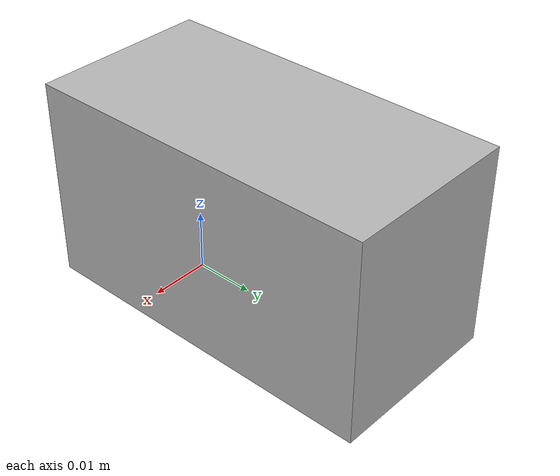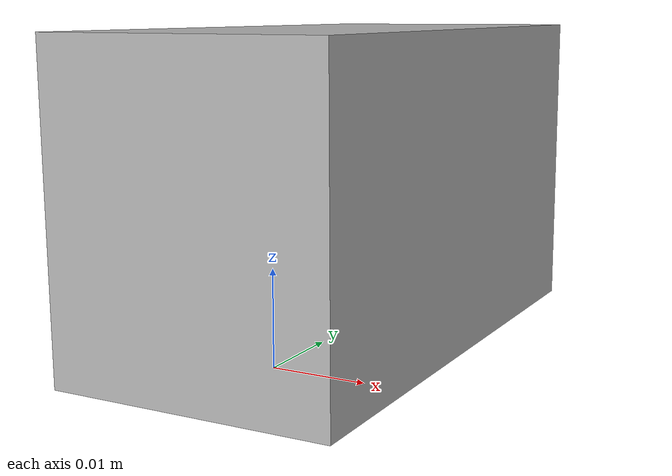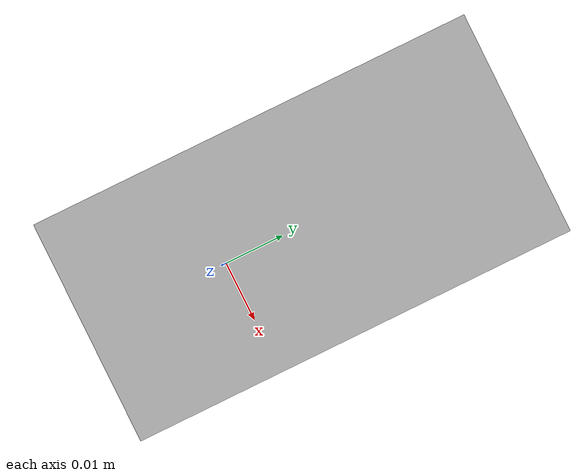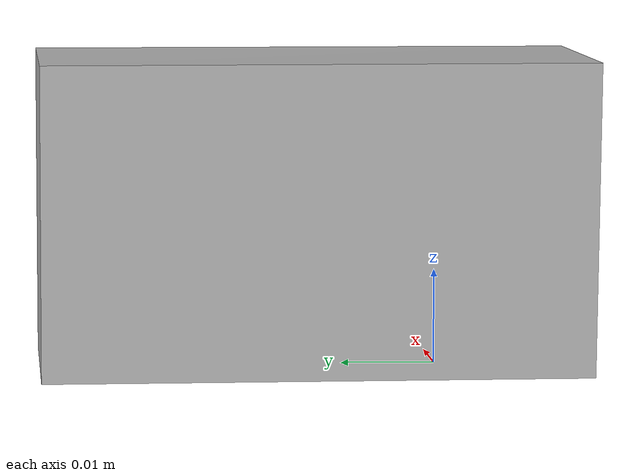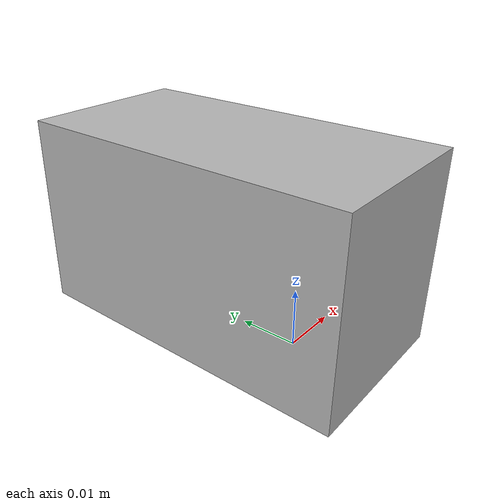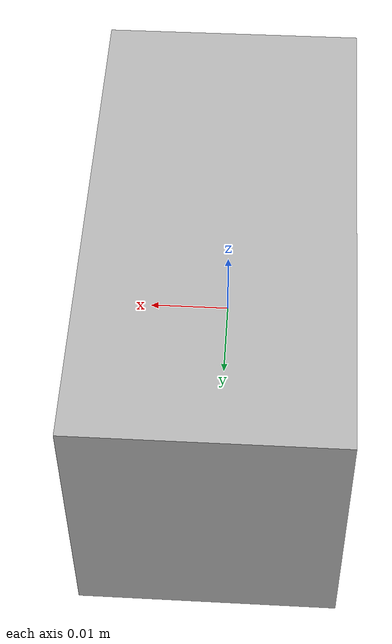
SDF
<?xml version="1.0" ?>
<sdf version="1.5">
  <model name="Custom box">
    <static>true</static>
    <link name="box_link">

      <collision name="collision">
        <geometry>
          <mesh>
            <uri>model://box/meshes/CUBE2.dae</uri>
            <scale>0.5 1.0 1.0</scale>
          </mesh>
        </geometry>

        <surface>
          <bounce>
            <restitution_coefficient>1</restitution_coefficient>
            <threshold>1e+06</threshold>
          </bounce>
          <contact>
            <collide_without_contact>0</collide_without_contact>
            <collide_without_contact_bitmask>1</collide_without_contact_bitmask>
            <collide_bitmask>1</collide_bitmask>
            <ode>
              <soft_cfm>0</soft_cfm>
              <soft_erp>0.2</soft_erp>
              <kp>1e+13</kp>
              <kd>1</kd>
              <max_vel>0.01</max_vel>
              <min_depth>0</min_depth>
            </ode>
            <bullet>
              <split_impulse>1</split_impulse>
              <split_impulse_penetration_threshold>-0.01</split_impulse_penetration_threshold>
              <soft_cfm>0</soft_cfm>
              <soft_erp>0.2</soft_erp>
              <kp>1e+13</kp>
              <kd>1</kd>
            </bullet>
          </contact>
          <friction>
            <ode>
              <mu>0.03</mu>
              <mu2>0.03</mu2>
            </ode>
          </friction>
        </surface>
      </collision>

      <visual name="visual">
        <geometry>
          <mesh>
            <uri>model://box/meshes/CUBE2.dae</uri>
            <scale>0.5 1.0 1.0</scale>
          </mesh>
        </geometry>
        <material>
          <script>
            <uri>model://box/materials/scripts</uri>
            <uri>model://box/materials/textures</uri>
            <name>Box/Diffuse</name>
          </script>
        </material>
      </visual>

      <inertial>
        <inertia>
          <ixx>0.14*(0.058*0.058+0.033*0.033)/12</ixx>
          <ixy>0.1</ixy>
          <ixz>0.1</ixz>
          <iyy>0.14*(0.026*0.026+0.033*0.033)/12</iyy>
          <iyz>0.1</iyz>
          <izz>0.14*(0.026*0.026+0.033*0.033)/12</izz>
        </inertia>
        <mass>0.14</mass>
      </inertial>
    </link>
  </model>
</sdf>
